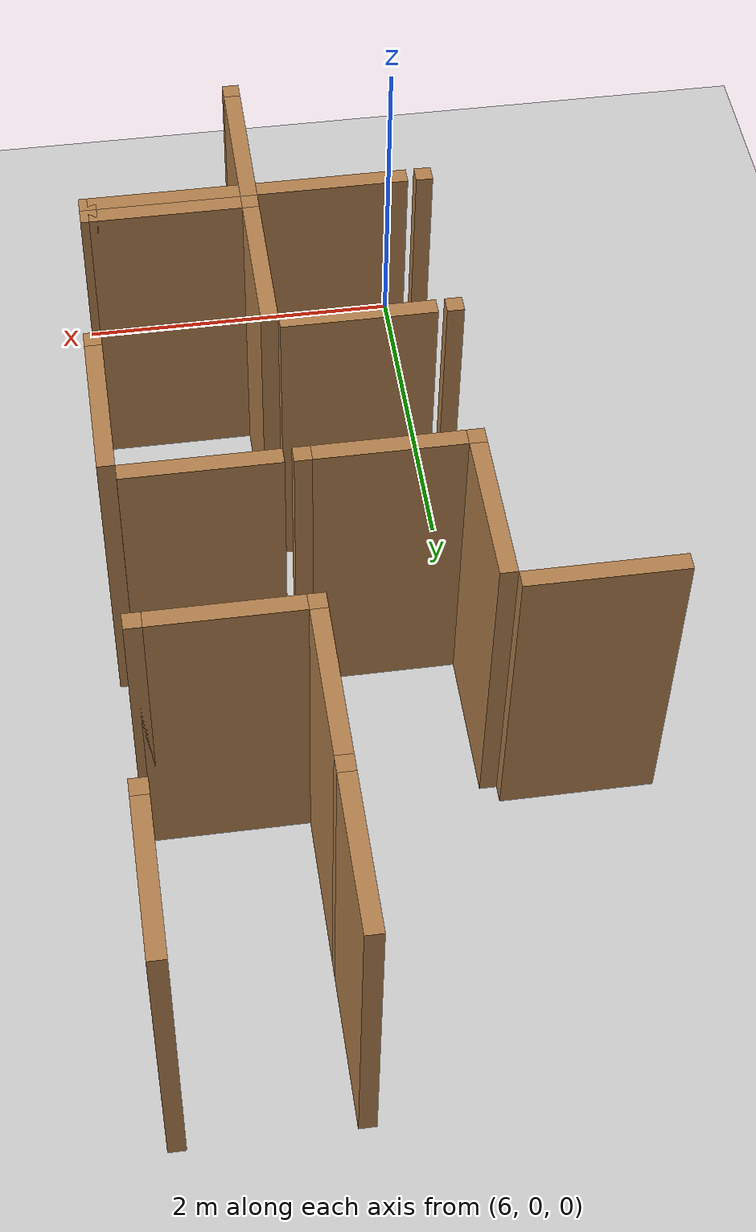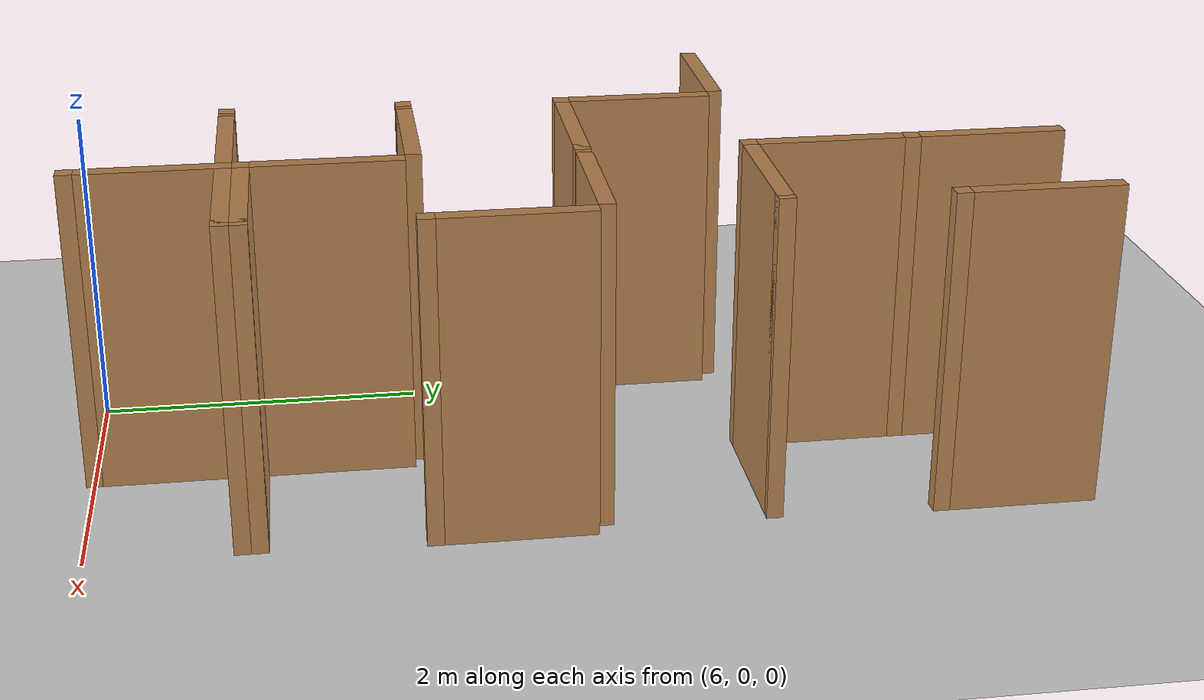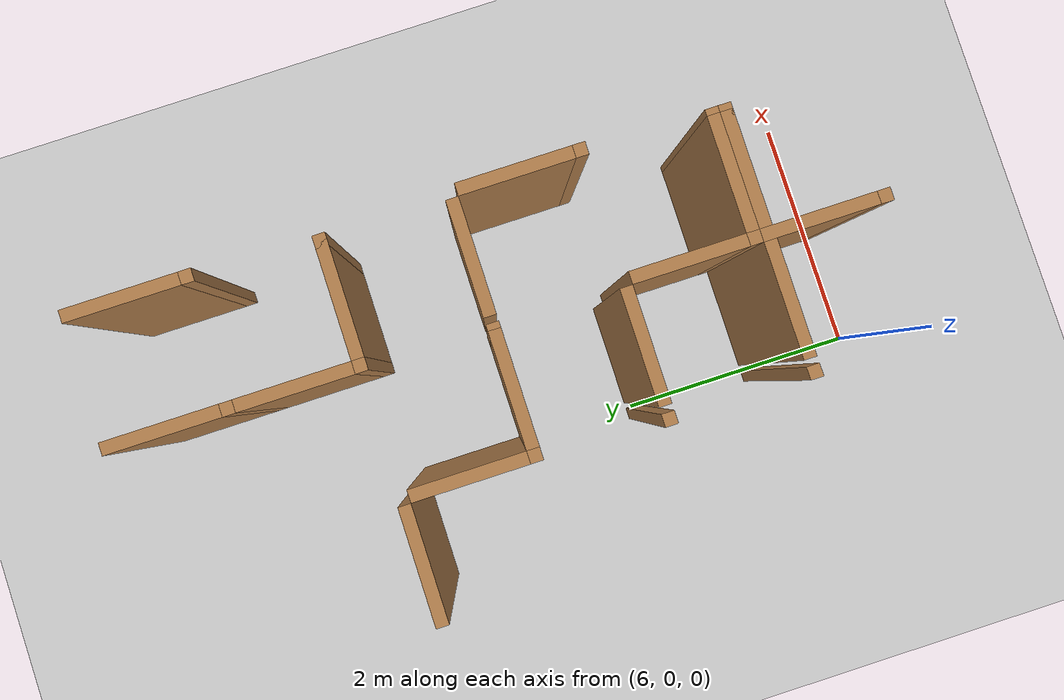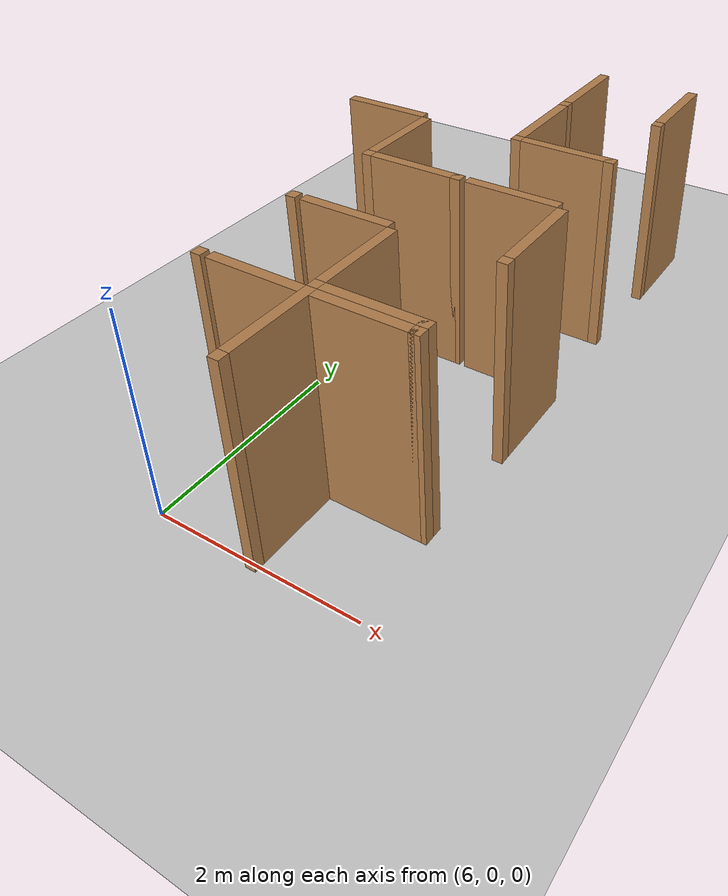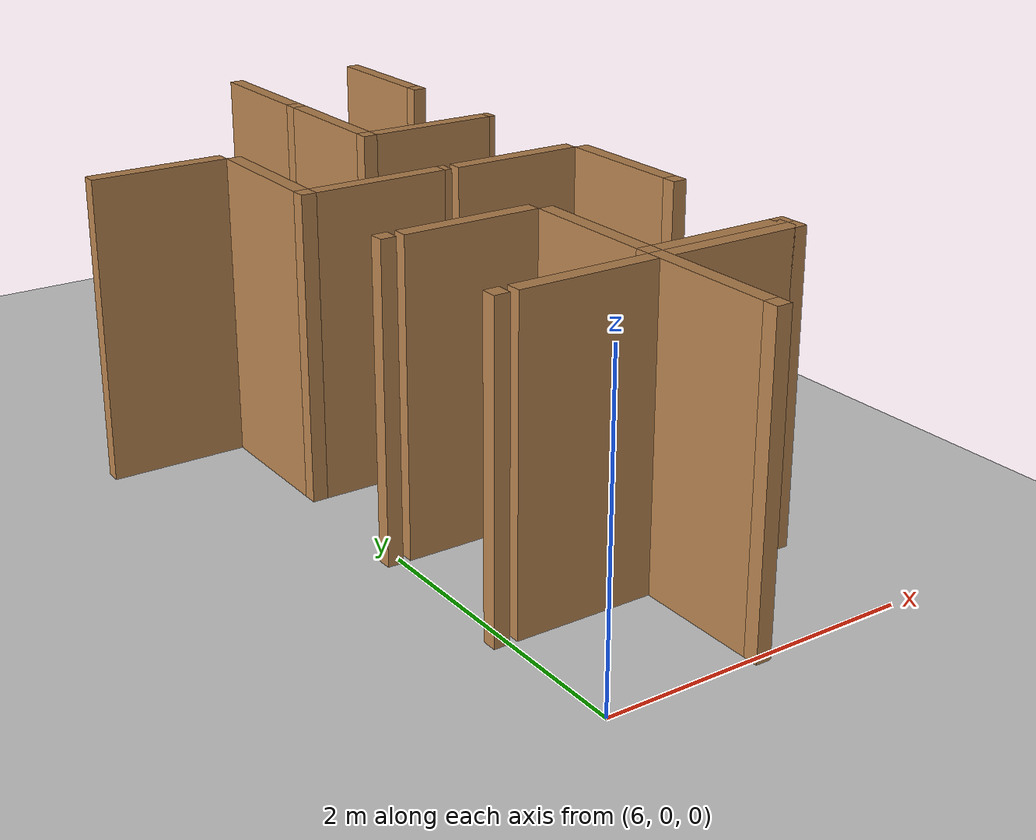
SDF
<sdf version="1.6">
 <world name="default">
  <include><uri>model://sun</uri></include>
  <model name="ground_plane">
   <static>true</static>
   <link name="link">
    <collision name="collision"><geometry><plane><size>12.0 12.0</size></plane></geometry></collision>
    <visual name="visual">
     <cast_shadows>false</cast_shadows>
     <geometry><plane><size>12.0 12.0</size></plane></geometry>
     <material>
      <script><uri>file://media/materials/scripts/gazebo.material</uri><name>Gazebo/Grey</name></script>
     </material>
    </visual>
   </link>
   <pose>6.0 6.0 0 0 0 0</pose>
  </model>
  <model name="vwall_0_7">
   <pose>7.0 0.5 1.0 0 0 0</pose>
   <link name="link">
    <collision name="collision"><geometry><box><size>0.1 0.9 2</size></box></geometry></collision>
    <visual name="visual">
     <geometry><box><size>0.1 0.9 2</size></box></geometry>
     <material>
      <script><uri>file://media/materials/scripts/gazebo.material</uri><name>Gazebo/Wood</name></script>
     </material>
    </visual>
   </link>
  </model>
  <model name="joint_7.0_0.0">
   <pose>7.0 0.0 1.0 0 0 0</pose>
   <link name="link">
    <collision name="collision"><geometry><box><size>0.1 0.1 2</size></box></geometry></collision>
    <visual name="visual">
     <geometry><box><size>0.1 0.1 2</size></box></geometry>
     <material>
      <script><uri>file://media/materials/scripts/gazebo.material</uri><name>Gazebo/Wood</name></script>
     </material>
    </visual>
   </link>
  </model>
  <model name="vwall_1_7">
   <pose>7.0 1.5 1.0 0 0 0</pose>
   <link name="link">
    <collision name="collision"><geometry><box><size>0.1 0.9 2</size></box></geometry></collision>
    <visual name="visual">
     <geometry><box><size>0.1 0.9 2</size></box></geometry>
     <material>
      <script><uri>file://media/materials/scripts/gazebo.material</uri><name>Gazebo/Wood</name></script>
     </material>
    </visual>
   </link>
  </model>
  <model name="joint_7.0_1.0">
   <pose>7.0 1.0 1.0 0 0 0</pose>
   <link name="link">
    <collision name="collision"><geometry><box><size>0.1 0.1 2</size></box></geometry></collision>
    <visual name="visual">
     <geometry><box><size>0.1 0.1 2</size></box></geometry>
     <material>
      <script><uri>file://media/materials/scripts/gazebo.material</uri><name>Gazebo/Wood</name></script>
     </material>
    </visual>
   </link>
  </model>
  <model name="vwall_2_8">
   <pose>8.0 2.5 1.0 0 0 0</pose>
   <link name="link">
    <collision name="collision"><geometry><box><size>0.1 0.9 2</size></box></geometry></collision>
    <visual name="visual">
     <geometry><box><size>0.1 0.9 2</size></box></geometry>
     <material>
      <script><uri>file://media/materials/scripts/gazebo.material</uri><name>Gazebo/Wood</name></script>
     </material>
    </visual>
   </link>
  </model>
  <model name="joint_8.0_2.0">
   <pose>8.0 2.0 1.0 0 0 0</pose>
   <link name="link">
    <collision name="collision"><geometry><box><size>0.1 0.1 2</size></box></geometry></collision>
    <visual name="visual">
     <geometry><box><size>0.1 0.1 2</size></box></geometry>
     <material>
      <script><uri>file://media/materials/scripts/gazebo.material</uri><name>Gazebo/Wood</name></script>
     </material>
    </visual>
   </link>
  </model>
  <model name="vwall_3_6">
   <pose>6.0 3.5 1.0 0 0 0</pose>
   <link name="link">
    <collision name="collision"><geometry><box><size>0.1 0.9 2</size></box></geometry></collision>
    <visual name="visual">
     <geometry><box><size>0.1 0.9 2</size></box></geometry>
     <material>
      <script><uri>file://media/materials/scripts/gazebo.material</uri><name>Gazebo/Wood</name></script>
     </material>
    </visual>
   </link>
  </model>
  <model name="joint_6.0_3.0">
   <pose>6.0 3.0 1.0 0 0 0</pose>
   <link name="link">
    <collision name="collision"><geometry><box><size>0.1 0.1 2</size></box></geometry></collision>
    <visual name="visual">
     <geometry><box><size>0.1 0.1 2</size></box></geometry>
     <material>
      <script><uri>file://media/materials/scripts/gazebo.material</uri><name>Gazebo/Wood</name></script>
     </material>
    </visual>
   </link>
  </model>
  <model name="vwall_4_7">
   <pose>7.0 4.5 1.0 0 0 0</pose>
   <link name="link">
    <collision name="collision"><geometry><box><size>0.1 0.9 2</size></box></geometry></collision>
    <visual name="visual">
     <geometry><box><size>0.1 0.9 2</size></box></geometry>
     <material>
      <script><uri>file://media/materials/scripts/gazebo.material</uri><name>Gazebo/Wood</name></script>
     </material>
    </visual>
   </link>
  </model>
  <model name="joint_7.0_4.0">
   <pose>7.0 4.0 1.0 0 0 0</pose>
   <link name="link">
    <collision name="collision"><geometry><box><size>0.1 0.1 2</size></box></geometry></collision>
    <visual name="visual">
     <geometry><box><size>0.1 0.1 2</size></box></geometry>
     <material>
      <script><uri>file://media/materials/scripts/gazebo.material</uri><name>Gazebo/Wood</name></script>
     </material>
    </visual>
   </link>
  </model>
  <model name="vwall_5_7">
   <pose>7.0 5.5 1.0 0 0 0</pose>
   <link name="link">
    <collision name="collision"><geometry><box><size>0.1 0.9 2</size></box></geometry></collision>
    <visual name="visual">
     <geometry><box><size>0.1 0.9 2</size></box></geometry>
     <material>
      <script><uri>file://media/materials/scripts/gazebo.material</uri><name>Gazebo/Wood</name></script>
     </material>
    </visual>
   </link>
  </model>
  <model name="joint_7.0_5.0">
   <pose>7.0 5.0 1.0 0 0 0</pose>
   <link name="link">
    <collision name="collision"><geometry><box><size>0.1 0.1 2</size></box></geometry></collision>
    <visual name="visual">
     <geometry><box><size>0.1 0.1 2</size></box></geometry>
     <material>
      <script><uri>file://media/materials/scripts/gazebo.material</uri><name>Gazebo/Wood</name></script>
     </material>
    </visual>
   </link>
  </model>
  <model name="vwall_5_8">
   <pose>8.0 5.5 1.0 0 0 0</pose>
   <link name="link">
    <collision name="collision"><geometry><box><size>0.1 0.9 2</size></box></geometry></collision>
    <visual name="visual">
     <geometry><box><size>0.1 0.9 2</size></box></geometry>
     <material>
      <script><uri>file://media/materials/scripts/gazebo.material</uri><name>Gazebo/Wood</name></script>
     </material>
    </visual>
   </link>
  </model>
  <model name="joint_8.0_5.0">
   <pose>8.0 5.0 1.0 0 0 0</pose>
   <link name="link">
    <collision name="collision"><geometry><box><size>0.1 0.1 2</size></box></geometry></collision>
    <visual name="visual">
     <geometry><box><size>0.1 0.1 2</size></box></geometry>
     <material>
      <script><uri>file://media/materials/scripts/gazebo.material</uri><name>Gazebo/Wood</name></script>
     </material>
    </visual>
   </link>
  </model>
  <model name="joint_5.95_0.9">
   <pose>5.95 0.9 1.0 0 0 0</pose>
   <link name="link">
    <collision name="collision"><geometry><box><size>0.1 0.1 2</size></box></geometry></collision>
    <visual name="visual">
     <geometry><box><size>0.1 0.1 2</size></box></geometry>
     <material>
      <script><uri>file://media/materials/scripts/gazebo.material</uri><name>Gazebo/Wood</name></script>
     </material>
    </visual>
   </link>
  </model>
  <model name="hwall_0_6">
   <pose>6.5 0.9 1.0 0 0 0</pose>
   <link name="link">
    <collision name="collision"><geometry><box><size>0.9 0.1 2</size></box></geometry></collision>
    <visual name="visual">
     <geometry><box><size>0.9 0.1 2</size></box></geometry>
     <material>
      <script><uri>file://media/materials/scripts/gazebo.material</uri><name>Gazebo/Wood</name></script>
     </material>
    </visual>
   </link>
  </model>
  <model name="hwall_0_7">
   <pose>7.5 0.9 1.0 0 0 0</pose>
   <link name="link">
    <collision name="collision"><geometry><box><size>0.9 0.1 2</size></box></geometry></collision>
    <visual name="visual">
     <geometry><box><size>0.9 0.1 2</size></box></geometry>
     <material>
      <script><uri>file://media/materials/scripts/gazebo.material</uri><name>Gazebo/Wood</name></script>
     </material>
    </visual>
   </link>
  </model>
  <model name="joint_7.95_0.9">
   <pose>7.95 0.9 1.0 0 0 0</pose>
   <link name="link">
    <collision name="collision"><geometry><box><size>0.1 0.1 2</size></box></geometry></collision>
    <visual name="visual">
     <geometry><box><size>0.1 0.1 2</size></box></geometry>
     <material>
      <script><uri>file://media/materials/scripts/gazebo.material</uri><name>Gazebo/Wood</name></script>
     </material>
    </visual>
   </link>
  </model>
  <model name="hwall_1_7">
   <pose>7.5 1.0 1.0 0 0 0</pose>
   <link name="link">
    <collision name="collision"><geometry><box><size>0.9 0.1 2</size></box></geometry></collision>
    <visual name="visual">
     <geometry><box><size>0.9 0.1 2</size></box></geometry>
     <material>
      <script><uri>file://media/materials/scripts/gazebo.material</uri><name>Gazebo/Wood</name></script>
     </material>
    </visual>
   </link>
  </model>
  <model name="joint_7.95_1.0">
   <pose>7.95 1.0 1.0 0 0 0</pose>
   <link name="link">
    <collision name="collision"><geometry><box><size>0.1 0.1 2</size></box></geometry></collision>
    <visual name="visual">
     <geometry><box><size>0.1 0.1 2</size></box></geometry>
     <material>
      <script><uri>file://media/materials/scripts/gazebo.material</uri><name>Gazebo/Wood</name></script>
     </material>
    </visual>
   </link>
  </model>
  <model name="joint_5.95_2.0">
   <pose>5.95 2.0 1.0 0 0 0</pose>
   <link name="link">
    <collision name="collision"><geometry><box><size>0.1 0.1 2</size></box></geometry></collision>
    <visual name="visual">
     <geometry><box><size>0.1 0.1 2</size></box></geometry>
     <material>
      <script><uri>file://media/materials/scripts/gazebo.material</uri><name>Gazebo/Wood</name></script>
     </material>
    </visual>
   </link>
  </model>
  <model name="hwall_2_6">
   <pose>6.5 2.0 1.0 0 0 0</pose>
   <link name="link">
    <collision name="collision"><geometry><box><size>0.9 0.1 2</size></box></geometry></collision>
    <visual name="visual">
     <geometry><box><size>0.9 0.1 2</size></box></geometry>
     <material>
      <script><uri>file://media/materials/scripts/gazebo.material</uri><name>Gazebo/Wood</name></script>
     </material>
    </visual>
   </link>
  </model>
  <model name="hwall_3_6">
   <pose>6.5 3.0 1.0 0 0 0</pose>
   <link name="link">
    <collision name="collision"><geometry><box><size>0.9 0.1 2</size></box></geometry></collision>
    <visual name="visual">
     <geometry><box><size>0.9 0.1 2</size></box></geometry>
     <material>
      <script><uri>file://media/materials/scripts/gazebo.material</uri><name>Gazebo/Wood</name></script>
     </material>
    </visual>
   </link>
  </model>
  <model name="joint_6.95_3.0">
   <pose>6.95 3.0 1.0 0 0 0</pose>
   <link name="link">
    <collision name="collision"><geometry><box><size>0.1 0.1 2</size></box></geometry></collision>
    <visual name="visual">
     <geometry><box><size>0.1 0.1 2</size></box></geometry>
     <material>
      <script><uri>file://media/materials/scripts/gazebo.material</uri><name>Gazebo/Wood</name></script>
     </material>
    </visual>
   </link>
  </model>
  <model name="hwall_3_7">
   <pose>7.5 3.0 1.0 0 0 0</pose>
   <link name="link">
    <collision name="collision"><geometry><box><size>0.9 0.1 2</size></box></geometry></collision>
    <visual name="visual">
     <geometry><box><size>0.9 0.1 2</size></box></geometry>
     <material>
      <script><uri>file://media/materials/scripts/gazebo.material</uri><name>Gazebo/Wood</name></script>
     </material>
    </visual>
   </link>
  </model>
  <model name="hwall_4_5">
   <pose>5.5 4.0 1.0 0 0 0</pose>
   <link name="link">
    <collision name="collision"><geometry><box><size>0.9 0.1 2</size></box></geometry></collision>
    <visual name="visual">
     <geometry><box><size>0.9 0.1 2</size></box></geometry>
     <material>
      <script><uri>file://media/materials/scripts/gazebo.material</uri><name>Gazebo/Wood</name></script>
     </material>
    </visual>
   </link>
  </model>
  <model name="hwall_4_7">
   <pose>7.5 4.0 1.0 0 0 0</pose>
   <link name="link">
    <collision name="collision"><geometry><box><size>0.9 0.1 2</size></box></geometry></collision>
    <visual name="visual">
     <geometry><box><size>0.9 0.1 2</size></box></geometry>
     <material>
      <script><uri>file://media/materials/scripts/gazebo.material</uri><name>Gazebo/Wood</name></script>
     </material>
    </visual>
   </link>
  </model>
  <model name="joint_7.95_4.0">
   <pose>7.95 4.0 1.0 0 0 0</pose>
   <link name="link">
    <collision name="collision"><geometry><box><size>0.1 0.1 2</size></box></geometry></collision>
    <visual name="visual">
     <geometry><box><size>0.1 0.1 2</size></box></geometry>
     <material>
      <script><uri>file://media/materials/scripts/gazebo.material</uri><name>Gazebo/Wood</name></script>
     </material>
    </visual>
   </link>
  </model>
 </world>
</sdf>
